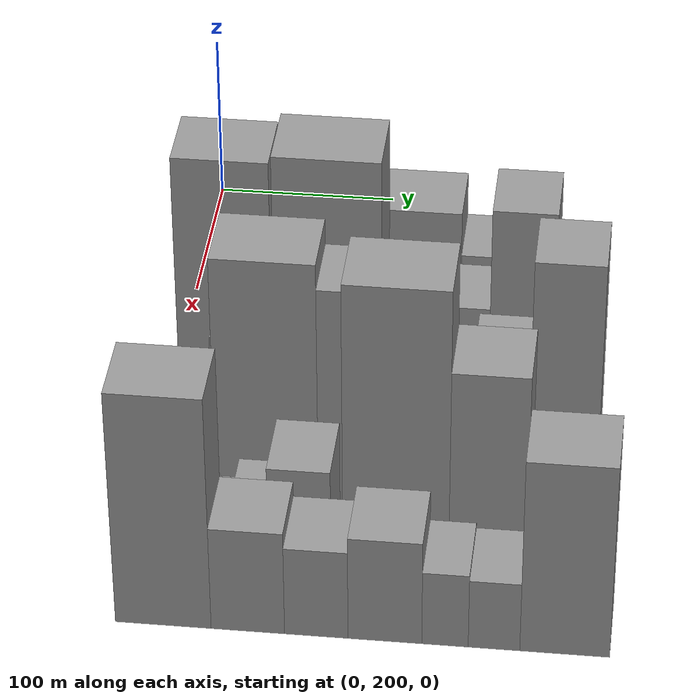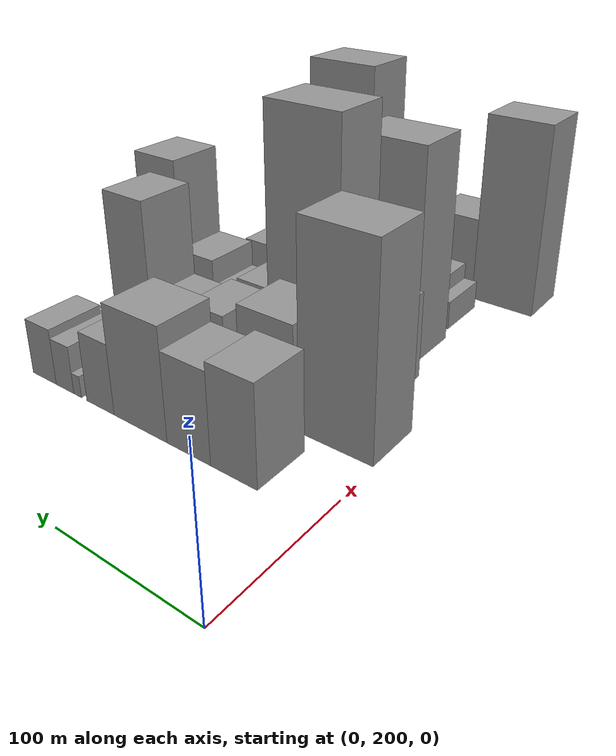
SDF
<sdf version="1.6">
 <world name="default">
  <model name="building_34">
   <static>1</static>
   <pose>100.0000 255.2590 0 0.000000 0.000000 0.000000</pose>
   <link name="link">
    <pose>0 0 33.00 0 0 0</pose>
    <collision name="collision"><geometry><box><size>40.0000 33.1487 66.0000</size></box></geometry></collision>
    <visual name="visual">
     <cast_shadows>0</cast_shadows>
     <geometry><box><size>40.0000 33.1487 66.0000</size></box></geometry>
     <material>
      <script>
       <uri>model://grey_wall/materials/scripts</uri>
       <uri>model://grey_wall/materials/textures</uri>
       <name>vrc/grey_wall</name>
      </script>
     </material>
    </visual>
   </link>
  </model>
  <model name="building_35">
   <static>1</static>
   <pose>100.0000 288.4761 0 0.000000 0.000000 0.000000</pose>
   <link name="link">
    <pose>0 0 30.00 0 0 0</pose>
    <collision name="collision"><geometry><box><size>40.0000 33.2853 60.0000</size></box></geometry></collision>
    <visual name="visual">
     <cast_shadows>0</cast_shadows>
     <geometry><box><size>40.0000 33.2853 60.0000</size></box></geometry>
     <material>
      <script>
       <uri>model://grey_wall/materials/scripts</uri>
       <uri>model://grey_wall/materials/textures</uri>
       <name>vrc/grey_wall</name>
      </script>
     </material>
    </visual>
   </link>
  </model>
  <model name="building_36">
   <static>1</static>
   <pose>100.0000 327.2402 0 0.000000 0.000000 0.000000</pose>
   <link name="link">
    <pose>0 0 37.50 0 0 0</pose>
    <collision name="collision"><geometry><box><size>40.0000 44.2429 75.0000</size></box></geometry></collision>
    <visual name="visual">
     <cast_shadows>0</cast_shadows>
     <geometry><box><size>40.0000 44.2429 75.0000</size></box></geometry>
     <material>
      <script>
       <uri>model://grey_wall/materials/scripts</uri>
       <uri>model://grey_wall/materials/textures</uri>
       <name>vrc/grey_wall</name>
      </script>
     </material>
    </visual>
   </link>
  </model>
  <model name="building_37">
   <static>1</static>
   <pose>100.0000 361.6530 0 0.000000 0.000000 0.000000</pose>
   <link name="link">
    <pose>0 0 24.00 0 0 0</pose>
    <collision name="collision"><geometry><box><size>40.0000 24.5829 48.0000</size></box></geometry></collision>
    <visual name="visual">
     <cast_shadows>0</cast_shadows>
     <geometry><box><size>40.0000 24.5829 48.0000</size></box></geometry>
     <material>
      <script>
       <uri>model://grey_wall/materials/scripts</uri>
       <uri>model://grey_wall/materials/textures</uri>
       <name>vrc/grey_wall</name>
      </script>
     </material>
    </visual>
   </link>
  </model>
  <model name="building_38">
   <static>1</static>
   <pose>100.0000 382.5229 0 0.000000 0.000000 0.000000</pose>
   <link name="link">
    <pose>0 0 7.50 0 0 0</pose>
    <collision name="collision"><geometry><box><size>40.0000 7.1568 15.0000</size></box></geometry></collision>
    <visual name="visual">
     <cast_shadows>0</cast_shadows>
     <geometry><box><size>40.0000 7.1568 15.0000</size></box></geometry>
     <material>
      <script>
       <uri>model://grey_wall/materials/scripts</uri>
       <uri>model://grey_wall/materials/textures</uri>
       <name>vrc/grey_wall</name>
      </script>
     </material>
    </visual>
   </link>
  </model>
  <model name="building_39">
   <static>1</static>
   <pose>100.0000 394.5761 0 0.000000 0.000000 0.000000</pose>
   <link name="link">
    <pose>0 0 16.50 0 0 0</pose>
    <collision name="collision"><geometry><box><size>40.0000 16.9496 33.0000</size></box></geometry></collision>
    <visual name="visual">
     <cast_shadows>0</cast_shadows>
     <geometry><box><size>40.0000 16.9496 33.0000</size></box></geometry>
     <material>
      <script>
       <uri>model://grey_wall/materials/scripts</uri>
       <uri>model://grey_wall/materials/textures</uri>
       <name>vrc/grey_wall</name>
      </script>
     </material>
    </visual>
   </link>
  </model>
  <model name="building_40">
   <static>1</static>
   <pose>100.0000 414.6169 0 0.000000 0.000000 0.000000</pose>
   <link name="link">
    <pose>0 0 19.50 0 0 0</pose>
    <collision name="collision"><geometry><box><size>40.0000 23.1319 39.0000</size></box></geometry></collision>
    <visual name="visual">
     <cast_shadows>0</cast_shadows>
     <geometry><box><size>40.0000 23.1319 39.0000</size></box></geometry>
     <material>
      <script>
       <uri>model://grey_wall/materials/scripts</uri>
       <uri>model://grey_wall/materials/textures</uri>
       <name>vrc/grey_wall</name>
      </script>
     </material>
    </visual>
   </link>
  </model>
  <model name="building_83">
   <static>1</static>
   <pose>152.0000 226.8128 0 0.000000 0.000000 0.000000</pose>
   <link name="link">
    <pose>0 0 67.50 0 0 0</pose>
    <collision name="collision"><geometry><box><size>40.0000 51.2383 135.0000</size></box></geometry></collision>
    <visual name="visual">
     <cast_shadows>0</cast_shadows>
     <geometry><box><size>40.0000 51.2383 135.0000</size></box></geometry>
     <material>
      <script>
       <uri>model://grey_wall/materials/scripts</uri>
       <uri>model://grey_wall/materials/textures</uri>
       <name>vrc/grey_wall</name>
      </script>
     </material>
    </visual>
   </link>
  </model>
  <model name="building_84">
   <static>1</static>
   <pose>152.0000 275.9680 0 0.000000 0.000000 0.000000</pose>
   <link name="link">
    <pose>0 0 34.50 0 0 0</pose>
    <collision name="collision"><geometry><box><size>40.0000 41.0722 69.0000</size></box></geometry></collision>
    <visual name="visual">
     <cast_shadows>0</cast_shadows>
     <geometry><box><size>40.0000 41.0722 69.0000</size></box></geometry>
     <material>
      <script>
       <uri>model://grey_wall/materials/scripts</uri>
       <uri>model://grey_wall/materials/textures</uri>
       <name>vrc/grey_wall</name>
      </script>
     </material>
    </visual>
   </link>
  </model>
  <model name="building_85">
   <static>1</static>
   <pose>152.0000 301.9832 0 0.000000 0.000000 0.000000</pose>
   <link name="link">
    <pose>0 0 13.50 0 0 0</pose>
    <collision name="collision"><geometry><box><size>40.0000 10.9582 27.0000</size></box></geometry></collision>
    <visual name="visual">
     <cast_shadows>0</cast_shadows>
     <geometry><box><size>40.0000 10.9582 27.0000</size></box></geometry>
     <material>
      <script>
       <uri>model://grey_wall/materials/scripts</uri>
       <uri>model://grey_wall/materials/textures</uri>
       <name>vrc/grey_wall</name>
      </script>
     </material>
    </visual>
   </link>
  </model>
  <model name="building_86">
   <static>1</static>
   <pose>152.0000 321.9917 0 0.000000 0.000000 0.000000</pose>
   <link name="link">
    <pose>0 0 28.50 0 0 0</pose>
    <collision name="collision"><geometry><box><size>40.0000 29.0587 57.0000</size></box></geometry></collision>
    <visual name="visual">
     <cast_shadows>0</cast_shadows>
     <geometry><box><size>40.0000 29.0587 57.0000</size></box></geometry>
     <material>
      <script>
       <uri>model://grey_wall/materials/scripts</uri>
       <uri>model://grey_wall/materials/textures</uri>
       <name>vrc/grey_wall</name>
      </script>
     </material>
    </visual>
   </link>
  </model>
  <model name="building_87">
   <static>1</static>
   <pose>152.0000 355.7983 0 0.000000 0.000000 0.000000</pose>
   <link name="link">
    <pose>0 0 25.50 0 0 0</pose>
    <collision name="collision"><geometry><box><size>40.0000 26.5545 51.0000</size></box></geometry></collision>
    <visual name="visual">
     <cast_shadows>0</cast_shadows>
     <geometry><box><size>40.0000 26.5545 51.0000</size></box></geometry>
     <material>
      <script>
       <uri>model://grey_wall/materials/scripts</uri>
       <uri>model://grey_wall/materials/textures</uri>
       <name>vrc/grey_wall</name>
      </script>
     </material>
    </visual>
   </link>
  </model>
  <model name="building_88">
   <static>1</static>
   <pose>152.0000 386.2051 0 0.000000 0.000000 0.000000</pose>
   <link name="link">
    <pose>0 0 57.00 0 0 0</pose>
    <collision name="collision"><geometry><box><size>40.0000 34.2590 114.0000</size></box></geometry></collision>
    <visual name="visual">
     <cast_shadows>0</cast_shadows>
     <geometry><box><size>40.0000 34.2590 114.0000</size></box></geometry>
     <material>
      <script>
       <uri>model://grey_wall/materials/scripts</uri>
       <uri>model://grey_wall/materials/textures</uri>
       <name>vrc/grey_wall</name>
      </script>
     </material>
    </visual>
   </link>
  </model>
  <model name="building_135">
   <static>1</static>
   <pose>204.0000 244.3025 0 0.000000 0.000000 0.000000</pose>
   <link name="link">
    <pose>0 0 30.00 0 0 0</pose>
    <collision name="collision"><geometry><box><size>40.0000 34.2127 60.0000</size></box></geometry></collision>
    <visual name="visual">
     <cast_shadows>0</cast_shadows>
     <geometry><box><size>40.0000 34.2127 60.0000</size></box></geometry>
     <material>
      <script>
       <uri>model://grey_wall/materials/scripts</uri>
       <uri>model://grey_wall/materials/textures</uri>
       <name>vrc/grey_wall</name>
      </script>
     </material>
    </visual>
   </link>
  </model>
  <model name="building_136">
   <static>1</static>
   <pose>204.0000 289.0864 0 0.000000 0.000000 0.000000</pose>
   <link name="link">
    <pose>0 0 87.00 0 0 0</pose>
    <collision name="collision"><geometry><box><size>40.0000 55.3552 174.0000</size></box></geometry></collision>
    <visual name="visual">
     <cast_shadows>0</cast_shadows>
     <geometry><box><size>40.0000 55.3552 174.0000</size></box></geometry>
     <material>
      <script>
       <uri>model://grey_wall/materials/scripts</uri>
       <uri>model://grey_wall/materials/textures</uri>
       <name>vrc/grey_wall</name>
      </script>
     </material>
    </visual>
   </link>
  </model>
  <model name="building_137">
   <static>1</static>
   <pose>204.0000 329.7256 0 0.000000 0.000000 0.000000</pose>
   <link name="link">
    <pose>0 0 25.50 0 0 0</pose>
    <collision name="collision"><geometry><box><size>40.0000 25.9233 51.0000</size></box></geometry></collision>
    <visual name="visual">
     <cast_shadows>0</cast_shadows>
     <geometry><box><size>40.0000 25.9233 51.0000</size></box></geometry>
     <material>
      <script>
       <uri>model://grey_wall/materials/scripts</uri>
       <uri>model://grey_wall/materials/textures</uri>
       <name>vrc/grey_wall</name>
      </script>
     </material>
    </visual>
   </link>
  </model>
  <model name="building_138">
   <static>1</static>
   <pose>204.0000 353.5084 0 0.000000 0.000000 0.000000</pose>
   <link name="link">
    <pose>0 0 19.50 0 0 0</pose>
    <collision name="collision"><geometry><box><size>40.0000 21.6423 39.0000</size></box></geometry></collision>
    <visual name="visual">
     <cast_shadows>0</cast_shadows>
     <geometry><box><size>40.0000 21.6423 39.0000</size></box></geometry>
     <material>
      <script>
       <uri>model://grey_wall/materials/scripts</uri>
       <uri>model://grey_wall/materials/textures</uri>
       <name>vrc/grey_wall</name>
      </script>
     </material>
    </visual>
   </link>
  </model>
  <model name="building_139">
   <static>1</static>
   <pose>204.0000 379.2875 0 0.000000 0.000000 0.000000</pose>
   <link name="link">
    <pose>0 0 28.50 0 0 0</pose>
    <collision name="collision"><geometry><box><size>40.0000 29.9158 57.0000</size></box></geometry></collision>
    <visual name="visual">
     <cast_shadows>0</cast_shadows>
     <geometry><box><size>40.0000 29.9158 57.0000</size></box></geometry>
     <material>
      <script>
       <uri>model://grey_wall/materials/scripts</uri>
       <uri>model://grey_wall/materials/textures</uri>
       <name>vrc/grey_wall</name>
      </script>
     </material>
    </visual>
   </link>
  </model>
  <model name="building_140">
   <static>1</static>
   <pose>204.0000 412.5350 0 0.000000 0.000000 0.000000</pose>
   <link name="link">
    <pose>0 0 60.00 0 0 0</pose>
    <collision name="collision"><geometry><box><size>40.0000 36.5794 120.0000</size></box></geometry></collision>
    <visual name="visual">
     <cast_shadows>0</cast_shadows>
     <geometry><box><size>40.0000 36.5794 120.0000</size></box></geometry>
     <material>
      <script>
       <uri>model://grey_wall/materials/scripts</uri>
       <uri>model://grey_wall/materials/textures</uri>
       <name>vrc/grey_wall</name>
      </script>
     </material>
    </visual>
   </link>
  </model>
  <model name="building_189">
   <static>1</static>
   <pose>256.0000 263.3804 0 0.000000 0.000000 0.000000</pose>
   <link name="link">
    <pose>0 0 73.50 0 0 0</pose>
    <collision name="collision"><geometry><box><size>40.0000 53.0446 147.0000</size></box></geometry></collision>
    <visual name="visual">
     <cast_shadows>0</cast_shadows>
     <geometry><box><size>40.0000 53.0446 147.0000</size></box></geometry>
     <material>
      <script>
       <uri>model://grey_wall/materials/scripts</uri>
       <uri>model://grey_wall/materials/textures</uri>
       <name>vrc/grey_wall</name>
      </script>
     </material>
    </visual>
   </link>
  </model>
  <model name="building_190">
   <static>1</static>
   <pose>256.0000 313.5025 0 0.000000 0.000000 0.000000</pose>
   <link name="link">
    <pose>0 0 66.00 0 0 0</pose>
    <collision name="collision"><geometry><box><size>40.0000 47.1995 132.0000</size></box></geometry></collision>
    <visual name="visual">
     <cast_shadows>0</cast_shadows>
     <geometry><box><size>40.0000 47.1995 132.0000</size></box></geometry>
     <material>
      <script>
       <uri>model://grey_wall/materials/scripts</uri>
       <uri>model://grey_wall/materials/textures</uri>
       <name>vrc/grey_wall</name>
      </script>
     </material>
    </visual>
   </link>
  </model>
  <model name="building_191">
   <static>1</static>
   <pose>256.0000 345.5120 0 0.000000 0.000000 0.000000</pose>
   <link name="link">
    <pose>0 0 16.50 0 0 0</pose>
    <collision name="collision"><geometry><box><size>40.0000 16.8196 33.0000</size></box></geometry></collision>
    <visual name="visual">
     <cast_shadows>0</cast_shadows>
     <geometry><box><size>40.0000 16.8196 33.0000</size></box></geometry>
     <material>
      <script>
       <uri>model://grey_wall/materials/scripts</uri>
       <uri>model://grey_wall/materials/textures</uri>
       <name>vrc/grey_wall</name>
      </script>
     </material>
    </visual>
   </link>
  </model>
  <model name="building_192">
   <static>1</static>
   <pose>256.0000 367.0573 0 0.000000 0.000000 0.000000</pose>
   <link name="link">
    <pose>0 0 25.50 0 0 0</pose>
    <collision name="collision"><geometry><box><size>40.0000 26.2709 51.0000</size></box></geometry></collision>
    <visual name="visual">
     <cast_shadows>0</cast_shadows>
     <geometry><box><size>40.0000 26.2709 51.0000</size></box></geometry>
     <material>
      <script>
       <uri>model://grey_wall/materials/scripts</uri>
       <uri>model://grey_wall/materials/textures</uri>
       <name>vrc/grey_wall</name>
      </script>
     </material>
    </visual>
   </link>
  </model>
  <model name="building_193">
   <static>1</static>
   <pose>256.0000 385.5748 0 0.000000 0.000000 0.000000</pose>
   <link name="link">
    <pose>0 0 12.00 0 0 0</pose>
    <collision name="collision"><geometry><box><size>40.0000 10.7643 24.0000</size></box></geometry></collision>
    <visual name="visual">
     <cast_shadows>0</cast_shadows>
     <geometry><box><size>40.0000 10.7643 24.0000</size></box></geometry>
     <material>
      <script>
       <uri>model://grey_wall/materials/scripts</uri>
       <uri>model://grey_wall/materials/textures</uri>
       <name>vrc/grey_wall</name>
      </script>
     </material>
    </visual>
   </link>
  </model>
  <model name="building_194">
   <static>1</static>
   <pose>256.0000 403.7031 0 0.000000 0.000000 0.000000</pose>
   <link name="link">
    <pose>0 0 13.50 0 0 0</pose>
    <collision name="collision"><geometry><box><size>40.0000 13.4923 27.0000</size></box></geometry></collision>
    <visual name="visual">
     <cast_shadows>0</cast_shadows>
     <geometry><box><size>40.0000 13.4923 27.0000</size></box></geometry>
     <material>
      <script>
       <uri>model://grey_wall/materials/scripts</uri>
       <uri>model://grey_wall/materials/textures</uri>
       <name>vrc/grey_wall</name>
      </script>
     </material>
    </visual>
   </link>
  </model>
  <model name="building_235">
   <static>1</static>
   <pose>308.0000 246.4734 0 0.000000 0.000000 0.000000</pose>
   <link name="link">
    <pose>0 0 10.50 0 0 0</pose>
    <collision name="collision"><geometry><box><size>40.0000 9.9164 21.0000</size></box></geometry></collision>
    <visual name="visual">
     <cast_shadows>0</cast_shadows>
     <geometry><box><size>40.0000 9.9164 21.0000</size></box></geometry>
     <material>
      <script>
       <uri>model://grey_wall/materials/scripts</uri>
       <uri>model://grey_wall/materials/textures</uri>
       <name>vrc/grey_wall</name>
      </script>
     </material>
    </visual>
   </link>
  </model>
  <model name="building_236">
   <static>1</static>
   <pose>308.0000 261.2024 0 0.000000 0.000000 0.000000</pose>
   <link name="link">
    <pose>0 0 16.50 0 0 0</pose>
    <collision name="collision"><geometry><box><size>40.0000 19.5416 33.0000</size></box></geometry></collision>
    <visual name="visual">
     <cast_shadows>0</cast_shadows>
     <geometry><box><size>40.0000 19.5416 33.0000</size></box></geometry>
     <material>
      <script>
       <uri>model://grey_wall/materials/scripts</uri>
       <uri>model://grey_wall/materials/textures</uri>
       <name>vrc/grey_wall</name>
      </script>
     </material>
    </visual>
   </link>
  </model>
  <model name="building_237">
   <static>1</static>
   <pose>308.0000 286.7816 0 0.000000 0.000000 0.000000</pose>
   <link name="link">
    <pose>0 0 30.00 0 0 0</pose>
    <collision name="collision"><geometry><box><size>40.0000 31.6169 60.0000</size></box></geometry></collision>
    <visual name="visual">
     <cast_shadows>0</cast_shadows>
     <geometry><box><size>40.0000 31.6169 60.0000</size></box></geometry>
     <material>
      <script>
       <uri>model://grey_wall/materials/scripts</uri>
       <uri>model://grey_wall/materials/textures</uri>
       <name>vrc/grey_wall</name>
      </script>
     </material>
    </visual>
   </link>
  </model>
  <model name="building_238">
   <static>1</static>
   <pose>308.0000 335.0224 0 0.000000 0.000000 0.000000</pose>
   <link name="link">
    <pose>0 0 87.00 0 0 0</pose>
    <collision name="collision"><geometry><box><size>40.0000 52.8645 174.0000</size></box></geometry></collision>
    <visual name="visual">
     <cast_shadows>0</cast_shadows>
     <geometry><box><size>40.0000 52.8645 174.0000</size></box></geometry>
     <material>
      <script>
       <uri>model://grey_wall/materials/scripts</uri>
       <uri>model://grey_wall/materials/textures</uri>
       <name>vrc/grey_wall</name>
      </script>
     </material>
    </visual>
   </link>
  </model>
  <model name="building_239">
   <static>1</static>
   <pose>308.0000 380.6461 0 0.000000 0.000000 0.000000</pose>
   <link name="link">
    <pose>0 0 63.00 0 0 0</pose>
    <collision name="collision"><geometry><box><size>40.0000 38.3829 126.0000</size></box></geometry></collision>
    <visual name="visual">
     <cast_shadows>0</cast_shadows>
     <geometry><box><size>40.0000 38.3829 126.0000</size></box></geometry>
     <material>
      <script>
       <uri>model://grey_wall/materials/scripts</uri>
       <uri>model://grey_wall/materials/textures</uri>
       <name>vrc/grey_wall</name>
      </script>
     </material>
    </visual>
   </link>
  </model>
  <model name="building_240">
   <static>1</static>
   <pose>308.0000 408.2820 0 0.000000 0.000000 0.000000</pose>
   <link name="link">
    <pose>0 0 10.50 0 0 0</pose>
    <collision name="collision"><geometry><box><size>40.0000 8.8889 21.0000</size></box></geometry></collision>
    <visual name="visual">
     <cast_shadows>0</cast_shadows>
     <geometry><box><size>40.0000 8.8889 21.0000</size></box></geometry>
     <material>
      <script>
       <uri>model://grey_wall/materials/scripts</uri>
       <uri>model://grey_wall/materials/textures</uri>
       <name>vrc/grey_wall</name>
      </script>
     </material>
    </visual>
   </link>
  </model>
  <model name="building_286">
   <static>1</static>
   <pose>360.0000 226.2028 0 0.000000 0.000000 0.000000</pose>
   <link name="link">
    <pose>0 0 70.50 0 0 0</pose>
    <collision name="collision"><geometry><box><size>40.0000 47.2928 141.0000</size></box></geometry></collision>
    <visual name="visual">
     <cast_shadows>0</cast_shadows>
     <geometry><box><size>40.0000 47.2928 141.0000</size></box></geometry>
     <material>
      <script>
       <uri>model://grey_wall/materials/scripts</uri>
       <uri>model://grey_wall/materials/textures</uri>
       <name>vrc/grey_wall</name>
      </script>
     </material>
    </visual>
   </link>
  </model>
  <model name="building_287">
   <static>1</static>
   <pose>360.0000 267.9277 0 0.000000 0.000000 0.000000</pose>
   <link name="link">
    <pose>0 0 31.50 0 0 0</pose>
    <collision name="collision"><geometry><box><size>40.0000 36.1569 63.0000</size></box></geometry></collision>
    <visual name="visual">
     <cast_shadows>0</cast_shadows>
     <geometry><box><size>40.0000 36.1569 63.0000</size></box></geometry>
     <material>
      <script>
       <uri>model://grey_wall/materials/scripts</uri>
       <uri>model://grey_wall/materials/textures</uri>
       <name>vrc/grey_wall</name>
      </script>
     </material>
    </visual>
   </link>
  </model>
  <model name="building_288">
   <static>1</static>
   <pose>360.0000 301.5507 0 0.000000 0.000000 0.000000</pose>
   <link name="link">
    <pose>0 0 27.00 0 0 0</pose>
    <collision name="collision"><geometry><box><size>40.0000 31.0890 54.0000</size></box></geometry></collision>
    <visual name="visual">
     <cast_shadows>0</cast_shadows>
     <geometry><box><size>40.0000 31.0890 54.0000</size></box></geometry>
     <material>
      <script>
       <uri>model://grey_wall/materials/scripts</uri>
       <uri>model://grey_wall/materials/textures</uri>
       <name>vrc/grey_wall</name>
      </script>
     </material>
    </visual>
   </link>
  </model>
  <model name="building_289">
   <static>1</static>
   <pose>360.0000 335.1268 0 0.000000 0.000000 0.000000</pose>
   <link name="link">
    <pose>0 0 31.50 0 0 0</pose>
    <collision name="collision"><geometry><box><size>40.0000 36.0633 63.0000</size></box></geometry></collision>
    <visual name="visual">
     <cast_shadows>0</cast_shadows>
     <geometry><box><size>40.0000 36.0633 63.0000</size></box></geometry>
     <material>
      <script>
       <uri>model://grey_wall/materials/scripts</uri>
       <uri>model://grey_wall/materials/textures</uri>
       <name>vrc/grey_wall</name>
      </script>
     </material>
    </visual>
   </link>
  </model>
  <model name="building_290">
   <static>1</static>
   <pose>360.0000 364.4606 0 0.000000 0.000000 0.000000</pose>
   <link name="link">
    <pose>0 0 22.50 0 0 0</pose>
    <collision name="collision"><geometry><box><size>40.0000 22.6044 45.0000</size></box></geometry></collision>
    <visual name="visual">
     <cast_shadows>0</cast_shadows>
     <geometry><box><size>40.0000 22.6044 45.0000</size></box></geometry>
     <material>
      <script>
       <uri>model://grey_wall/materials/scripts</uri>
       <uri>model://grey_wall/materials/textures</uri>
       <name>vrc/grey_wall</name>
      </script>
     </material>
    </visual>
   </link>
  </model>
  <model name="building_291">
   <static>1</static>
   <pose>360.0000 388.2948 0 0.000000 0.000000 0.000000</pose>
   <link name="link">
    <pose>0 0 21.00 0 0 0</pose>
    <collision name="collision"><geometry><box><size>40.0000 25.0640 42.0000</size></box></geometry></collision>
    <visual name="visual">
     <cast_shadows>0</cast_shadows>
     <geometry><box><size>40.0000 25.0640 42.0000</size></box></geometry>
     <material>
      <script>
       <uri>model://grey_wall/materials/scripts</uri>
       <uri>model://grey_wall/materials/textures</uri>
       <name>vrc/grey_wall</name>
      </script>
     </material>
    </visual>
   </link>
  </model>
  <model name="building_292">
   <static>1</static>
   <pose>360.0000 422.6050 0 0.000000 0.000000 0.000000</pose>
   <link name="link">
    <pose>0 0 58.50 0 0 0</pose>
    <collision name="collision"><geometry><box><size>40.0000 43.5565 117.0000</size></box></geometry></collision>
    <visual name="visual">
     <cast_shadows>0</cast_shadows>
     <geometry><box><size>40.0000 43.5565 117.0000</size></box></geometry>
     <material>
      <script>
       <uri>model://grey_wall/materials/scripts</uri>
       <uri>model://grey_wall/materials/textures</uri>
       <name>vrc/grey_wall</name>
      </script>
     </material>
    </visual>
   </link>
  </model>
 </world>
</sdf>
